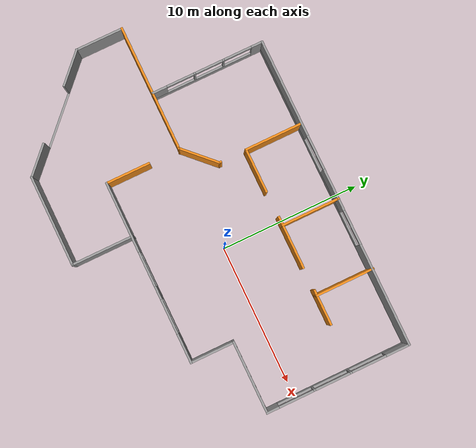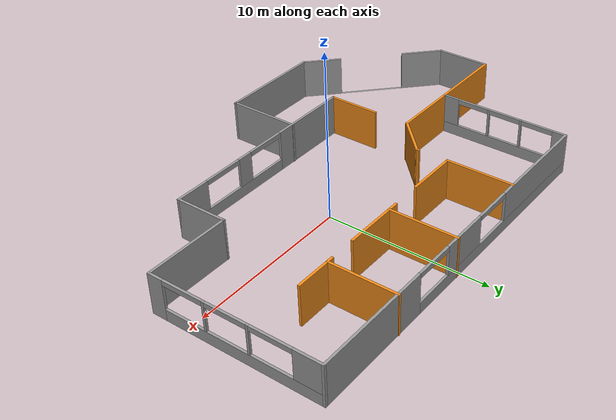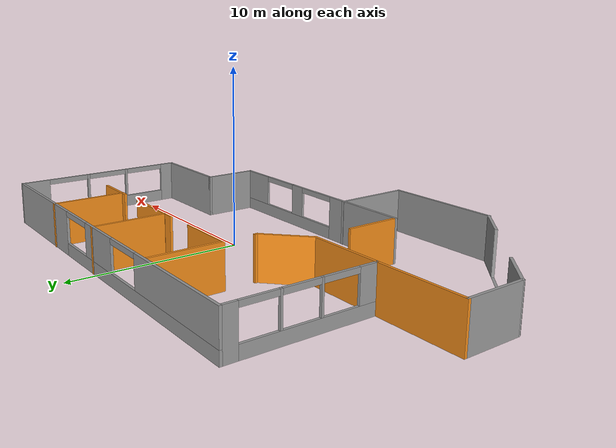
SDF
<sdf version="1.6">
 <world name="default">
  <scene><ambient>0.3 0.3 0.3 1</ambient><shadows>0</shadows><background>0.7 0.7 0.7 1</background></scene>
  <light name="sun" type="directional">
   <pose>0 0 10 0 -0 0</pose>
   <diffuse>0.8 0.8 0.8 1</diffuse>
   <specular>0.2 0.2 0.2 1</specular>
   <attenuation>
    <range>1000</range>
    <constant>0.9</constant>
    <linear>0.01</linear>
    <quadratic>0.001</quadratic>
   </attenuation>
   <direction>-0.5 0.1 -0.9</direction>
  </light>
  <model name="ground_plane">
   <static>1</static>
   <link name="link">
    <collision name="collision">
     <geometry><plane><normal>0 0 1</normal><size>100 100</size></plane></geometry>
     <surface><friction><ode><mu>100</mu><mu2>50</mu2></ode></friction></surface>
    </collision>
   </link>
  </model>
  <gravity>0 0 -9.8</gravity>
  <magnetic_field>6e-06 2.3e-05 -4.2e-05</magnetic_field>
  <atmosphere type="adiabatic"/>
  <physics name="default_physics" default="0" type="ode">
   <max_step_size>0.001</max_step_size>
   <real_time_factor>1</real_time_factor>
   <real_time_update_rate>1000</real_time_update_rate>
  </physics>
  <spherical_coordinates>
   <surface_model>EARTH_WGS84</surface_model>
   <latitude_deg>0</latitude_deg>
   <longitude_deg>0</longitude_deg>
   <elevation>0</elevation>
   <heading_deg>0</heading_deg>
  </spherical_coordinates>
  <model name="office_walls">
   <pose>-2.62192 -0.6586 0 0 -0 0</pose>
   <link name="Wall_10">
    <pose>1.96553 -4.56463 0 0 -0 0</pose>
    <visual name="Wall_10_Visual_0">
     <pose>-4.05781 0 1.25 0 -0 0</pose>
     <geometry><box><size>5.13439 0.15 2.5</size></box></geometry>
     <material>
      <script><uri>file://media/materials/scripts/gazebo.material</uri><name>Gazebo/Grey</name></script>
      <ambient>1 1 1 1</ambient>
     </material>
     <meta><layer>0</layer></meta>
    </visual>
    <collision name="Wall_10_Collision_0">
     <geometry><box><size>5.13439 0.15 2.5</size></box></geometry>
     <pose>-4.05781 0 1.25 0 -0 0</pose>
    </collision>
    <visual name="Wall_10_Visual_1">
     <pose>2.56719 0 0.35 0 -0 0</pose>
     <geometry><box><size>8.11561 0.15 0.7</size></box></geometry>
     <material>
      <script><uri>file://media/materials/scripts/gazebo.material</uri><name>Gazebo/Grey</name></script>
      <ambient>1 1 1 1</ambient>
     </material>
     <meta><layer>0</layer></meta>
    </visual>
    <collision name="Wall_10_Collision_1">
     <geometry><box><size>8.11561 0.15 0.7</size></box></geometry>
     <pose>2.56719 0 0.35 0 -0 0</pose>
    </collision>
    <visual name="Wall_10_Visual_2">
     <pose>1.49239 0 1.6 0 -0 0</pose>
     <geometry><box><size>0.966 0.15 1.8</size></box></geometry>
     <material>
      <script><uri>file://media/materials/scripts/gazebo.material</uri><name>Gazebo/Grey</name></script>
      <ambient>1 1 1 1</ambient>
     </material>
     <meta><layer>0</layer></meta>
    </visual>
    <collision name="Wall_10_Collision_2">
     <geometry><box><size>0.966 0.15 1.8</size></box></geometry>
     <pose>1.49239 0 1.6 0 -0 0</pose>
    </collision>
    <visual name="Wall_10_Visual_3">
     <pose>5.5502 0 1.6 0 -0 0</pose>
     <geometry><box><size>2.14961 0.15 1.8</size></box></geometry>
     <material>
      <script><uri>file://media/materials/scripts/gazebo.material</uri><name>Gazebo/Grey</name></script>
      <ambient>1 1 1 1</ambient>
     </material>
     <meta><layer>0</layer></meta>
    </visual>
    <collision name="Wall_10_Collision_3">
     <geometry><box><size>2.14961 0.15 1.8</size></box></geometry>
     <pose>5.5502 0 1.6 0 -0 0</pose>
    </collision>
    <visual name="Wall_10_Visual_4">
     <pose>-0.240611 0 2.35 0 -0 0</pose>
     <geometry><box><size>2.5 0.15 0.3</size></box></geometry>
     <material>
      <script><uri>file://media/materials/scripts/gazebo.material</uri><name>Gazebo/Grey</name></script>
      <ambient>1 1 1 1</ambient>
     </material>
     <meta><layer>0</layer></meta>
    </visual>
    <collision name="Wall_10_Collision_4">
     <geometry><box><size>2.5 0.15 0.3</size></box></geometry>
     <pose>-0.240611 0 2.35 0 -0 0</pose>
    </collision>
    <visual name="Wall_10_Visual_5">
     <pose>3.22539 0 2.35 0 -0 0</pose>
     <geometry><box><size>2.5 0.15 0.3</size></box></geometry>
     <material>
      <script><uri>file://media/materials/scripts/gazebo.material</uri><name>Gazebo/Grey</name></script>
      <ambient>1 1 1 1</ambient>
     </material>
     <meta><layer>0</layer></meta>
    </visual>
    <collision name="Wall_10_Collision_5">
     <geometry><box><size>2.5 0.15 0.3</size></box></geometry>
     <pose>3.22539 0 2.35 0 -0 0</pose>
    </collision>
   </link>
   <link name="Wall_11">
    <collision name="Wall_11_Collision">
     <geometry><box><size>3.25 0.15 2.5</size></box></geometry>
     <pose>0 0 1.25 0 -0 0</pose>
    </collision>
    <visual name="Wall_11_Visual">
     <pose>0 0 1.25 0 -0 0</pose>
     <geometry><box><size>3.25 0.15 2.5</size></box></geometry>
     <material>
      <script><uri>file://media/materials/scripts/gazebo.material</uri><name>Gazebo/Grey</name></script>
      <ambient>1 1 1 1</ambient>
     </material>
     <meta><layer>0</layer></meta>
    </visual>
    <pose>8.51553 -3.01463 0 0 -0 1.5708</pose>
   </link>
   <link name="Wall_12">
    <collision name="Wall_12_Collision">
     <geometry><box><size>5.25 0.15 2.5</size></box></geometry>
     <pose>0 0 1.25 0 -0 0</pose>
    </collision>
    <visual name="Wall_12_Visual">
     <pose>0 0 1.25 0 -0 0</pose>
     <geometry><box><size>5.25 0.15 2.5</size></box></geometry>
     <material>
      <script><uri>file://media/materials/scripts/gazebo.material</uri><name>Gazebo/Grey</name></script>
      <ambient>1 1 1 1</ambient>
     </material>
     <meta><layer>0</layer></meta>
    </visual>
    <pose>11.0655 -1.46463 0 0 -0 0</pose>
   </link>
   <link name="Wall_14">
    <pose>13.6155 3.71037 0 0 -0 1.5708</pose>
    <visual name="Wall_14_Visual_0">
     <pose>-4.77588 0 1.25 0 -0 0</pose>
     <geometry><box><size>0.948232 0.15 2.5</size></box></geometry>
     <material>
      <script><uri>file://media/materials/scripts/gazebo.material</uri><name>Gazebo/Grey</name></script>
      <ambient>1 1 1 1</ambient>
     </material>
     <meta><layer>0</layer></meta>
    </visual>
    <collision name="Wall_14_Collision_0">
     <geometry><box><size>0.948232 0.15 2.5</size></box></geometry>
     <pose>-4.77588 0 1.25 0 -0 0</pose>
    </collision>
    <visual name="Wall_14_Visual_1">
     <pose>0.474116 0 0.35 0 -0 0</pose>
     <geometry><box><size>9.55177 0.15 0.7</size></box></geometry>
     <material>
      <script><uri>file://media/materials/scripts/gazebo.material</uri><name>Gazebo/Grey</name></script>
      <ambient>1 1 1 1</ambient>
     </material>
     <meta><layer>0</layer></meta>
    </visual>
    <collision name="Wall_14_Collision_1">
     <geometry><box><size>9.55177 0.15 0.7</size></box></geometry>
     <pose>0.474116 0 0.35 0 -0 0</pose>
    </collision>
    <visual name="Wall_14_Visual_2">
     <pose>-1.72677 0 1.6 0 -0 0</pose>
     <geometry><box><size>0.15 0.15 1.8</size></box></geometry>
     <material>
      <script><uri>file://media/materials/scripts/gazebo.material</uri><name>Gazebo/Grey</name></script>
      <ambient>1 1 1 1</ambient>
     </material>
     <meta><layer>0</layer></meta>
    </visual>
    <collision name="Wall_14_Collision_2">
     <geometry><box><size>0.15 0.15 1.8</size></box></geometry>
     <pose>-1.72677 0 1.6 0 -0 0</pose>
    </collision>
    <visual name="Wall_14_Visual_3">
     <pose>0.923233 0 1.6 0 -0 0</pose>
     <geometry><box><size>0.15 0.15 1.8</size></box></geometry>
     <material>
      <script><uri>file://media/materials/scripts/gazebo.material</uri><name>Gazebo/Grey</name></script>
      <ambient>1 1 1 1</ambient>
     </material>
     <meta><layer>0</layer></meta>
    </visual>
    <collision name="Wall_14_Collision_3">
     <geometry><box><size>0.15 0.15 1.8</size></box></geometry>
     <pose>0.923233 0 1.6 0 -0 0</pose>
    </collision>
    <visual name="Wall_14_Visual_4">
     <pose>4.37412 0 1.6 0 -0 0</pose>
     <geometry><box><size>1.75177 0.15 1.8</size></box></geometry>
     <material>
      <script><uri>file://media/materials/scripts/gazebo.material</uri><name>Gazebo/Grey</name></script>
      <ambient>1 1 1 1</ambient>
     </material>
     <meta><layer>0</layer></meta>
    </visual>
    <collision name="Wall_14_Collision_4">
     <geometry><box><size>1.75177 0.15 1.8</size></box></geometry>
     <pose>4.37412 0 1.6 0 -0 0</pose>
    </collision>
    <visual name="Wall_14_Visual_5">
     <pose>-3.05177 0 2.35 0 -0 0</pose>
     <geometry><box><size>2.5 0.15 0.3</size></box></geometry>
     <material>
      <script><uri>file://media/materials/scripts/gazebo.material</uri><name>Gazebo/Grey</name></script>
      <ambient>1 1 1 1</ambient>
     </material>
     <meta><layer>0</layer></meta>
    </visual>
    <collision name="Wall_14_Collision_5">
     <geometry><box><size>2.5 0.15 0.3</size></box></geometry>
     <pose>-3.05177 0 2.35 0 -0 0</pose>
    </collision>
    <visual name="Wall_14_Visual_6">
     <pose>-0.401767 0 2.35 0 -0 0</pose>
     <geometry><box><size>2.5 0.15 0.3</size></box></geometry>
     <material>
      <script><uri>file://media/materials/scripts/gazebo.material</uri><name>Gazebo/Grey</name></script>
      <ambient>1 1 1 1</ambient>
     </material>
     <meta><layer>0</layer></meta>
    </visual>
    <collision name="Wall_14_Collision_6">
     <geometry><box><size>2.5 0.15 0.3</size></box></geometry>
     <pose>-0.401767 0 2.35 0 -0 0</pose>
    </collision>
    <visual name="Wall_14_Visual_7">
     <pose>2.24823 0 2.35 0 -0 0</pose>
     <geometry><box><size>2.5 0.15 0.3</size></box></geometry>
     <material>
      <script><uri>file://media/materials/scripts/gazebo.material</uri><name>Gazebo/Grey</name></script>
      <ambient>1 1 1 1</ambient>
     </material>
     <meta><layer>0</layer></meta>
    </visual>
    <collision name="Wall_14_Collision_7">
     <geometry><box><size>2.5 0.15 0.3</size></box></geometry>
     <pose>2.24823 0 2.35 0 -0 0</pose>
    </collision>
   </link>
   <link name="Wall_20">
    <pose>2.44053 8.88537 0 0 -0 3.14159</pose>
    <visual name="Wall_20_Visual_0">
     <pose>-7.55969 0 1.25 0 -0 0</pose>
     <geometry><box><size>7.38061 0.15 2.5</size></box></geometry>
     <material>
      <script><uri>file://media/materials/scripts/gazebo.material</uri><name>Gazebo/Grey</name></script>
      <ambient>1 1 1 1</ambient>
     </material>
     <meta><layer>0</layer></meta>
    </visual>
    <collision name="Wall_20_Collision_0">
     <geometry><box><size>7.38061 0.15 2.5</size></box></geometry>
     <pose>-7.55969 0 1.25 0 -0 0</pose>
    </collision>
    <visual name="Wall_20_Visual_1">
     <pose>3.6903 0 0.35 0 -0 0</pose>
     <geometry><box><size>15.1194 0.15 0.7</size></box></geometry>
     <material>
      <script><uri>file://media/materials/scripts/gazebo.material</uri><name>Gazebo/Grey</name></script>
      <ambient>1 1 1 1</ambient>
     </material>
     <meta><layer>0</layer></meta>
    </visual>
    <collision name="Wall_20_Collision_1">
     <geometry><box><size>15.1194 0.15 0.7</size></box></geometry>
     <pose>3.6903 0 0.35 0 -0 0</pose>
    </collision>
    <visual name="Wall_20_Visual_2">
     <pose>0.149611 0 1.6 0 -0 0</pose>
     <geometry><box><size>3.038 0.15 1.8</size></box></geometry>
     <material>
      <script><uri>file://media/materials/scripts/gazebo.material</uri><name>Gazebo/Grey</name></script>
      <ambient>1 1 1 1</ambient>
     </material>
     <meta><layer>0</layer></meta>
    </visual>
    <collision name="Wall_20_Collision_2">
     <geometry><box><size>3.038 0.15 1.8</size></box></geometry>
     <pose>0.149611 0 1.6 0 -0 0</pose>
    </collision>
    <visual name="Wall_20_Visual_3">
     <pose>7.7093 0 1.6 0 -0 0</pose>
     <geometry><box><size>7.08139 0.15 1.8</size></box></geometry>
     <material>
      <script><uri>file://media/materials/scripts/gazebo.material</uri><name>Gazebo/Grey</name></script>
      <ambient>1 1 1 1</ambient>
     </material>
     <meta><layer>0</layer></meta>
    </visual>
    <collision name="Wall_20_Collision_3">
     <geometry><box><size>7.08139 0.15 1.8</size></box></geometry>
     <pose>7.7093 0 1.6 0 -0 0</pose>
    </collision>
    <visual name="Wall_20_Visual_4">
     <pose>-2.61939 0 2.35 0 -0 0</pose>
     <geometry><box><size>2.5 0.15 0.3</size></box></geometry>
     <material>
      <script><uri>file://media/materials/scripts/gazebo.material</uri><name>Gazebo/Grey</name></script>
      <ambient>1 1 1 1</ambient>
     </material>
     <meta><layer>0</layer></meta>
    </visual>
    <collision name="Wall_20_Collision_4">
     <geometry><box><size>2.5 0.15 0.3</size></box></geometry>
     <pose>-2.61939 0 2.35 0 -0 0</pose>
    </collision>
    <visual name="Wall_20_Visual_5">
     <pose>2.91861 0 2.35 0 -0 0</pose>
     <geometry><box><size>2.5 0.15 0.3</size></box></geometry>
     <material>
      <script><uri>file://media/materials/scripts/gazebo.material</uri><name>Gazebo/Grey</name></script>
      <ambient>1 1 1 1</ambient>
     </material>
     <meta><layer>0</layer></meta>
    </visual>
    <collision name="Wall_20_Collision_5">
     <geometry><box><size>2.5 0.15 0.3</size></box></geometry>
     <pose>2.91861 0 2.35 0 -0 0</pose>
    </collision>
   </link>
   <link name="Wall_21">
    <pose>-8.73447 4.83537 0 0 -0 -1.5708</pose>
    <visual name="Wall_21_Visual_0">
     <pose>-3.68162 0 1.25 0 -0 0</pose>
     <geometry><box><size>0.886767 0.15 2.5</size></box></geometry>
     <material>
      <script><uri>file://media/materials/scripts/gazebo.material</uri><name>Gazebo/Grey</name></script>
      <ambient>1 1 1 1</ambient>
     </material>
     <meta><layer>0</layer></meta>
    </visual>
    <collision name="Wall_21_Collision_0">
     <geometry><box><size>0.886767 0.15 2.5</size></box></geometry>
     <pose>-3.68162 0 1.25 0 -0 0</pose>
    </collision>
    <visual name="Wall_21_Visual_1">
     <pose>0.443384 0 0.35 0 -0 0</pose>
     <geometry><box><size>7.36323 0.15 0.7</size></box></geometry>
     <material>
      <script><uri>file://media/materials/scripts/gazebo.material</uri><name>Gazebo/Grey</name></script>
      <ambient>1 1 1 1</ambient>
     </material>
     <meta><layer>0</layer></meta>
    </visual>
    <collision name="Wall_21_Collision_1">
     <geometry><box><size>7.36323 0.15 0.7</size></box></geometry>
     <pose>0.443384 0 0.35 0 -0 0</pose>
    </collision>
    <visual name="Wall_21_Visual_2">
     <pose>-1.17523 0 1.6 0 -0 0</pose>
     <geometry><box><size>0.126 0.15 1.8</size></box></geometry>
     <material>
      <script><uri>file://media/materials/scripts/gazebo.material</uri><name>Gazebo/Grey</name></script>
      <ambient>1 1 1 1</ambient>
     </material>
     <meta><layer>0</layer></meta>
    </visual>
    <collision name="Wall_21_Collision_2">
     <geometry><box><size>0.126 0.15 1.8</size></box></geometry>
     <pose>-1.17523 0 1.6 0 -0 0</pose>
    </collision>
    <visual name="Wall_21_Visual_3">
     <pose>0.951558 0 1.6 0 -0 0</pose>
     <geometry><box><size>0.127582 0.15 1.8</size></box></geometry>
     <material>
      <script><uri>file://media/materials/scripts/gazebo.material</uri><name>Gazebo/Grey</name></script>
      <ambient>1 1 1 1</ambient>
     </material>
     <meta><layer>0</layer></meta>
    </visual>
    <collision name="Wall_21_Collision_3">
     <geometry><box><size>0.127582 0.15 1.8</size></box></geometry>
     <pose>0.951558 0 1.6 0 -0 0</pose>
    </collision>
    <visual name="Wall_21_Visual_4">
     <pose>3.57017 0 1.6 0 -0 0</pose>
     <geometry><box><size>1.10965 0.15 1.8</size></box></geometry>
     <material>
      <script><uri>file://media/materials/scripts/gazebo.material</uri><name>Gazebo/Grey</name></script>
      <ambient>1 1 1 1</ambient>
     </material>
     <meta><layer>0</layer></meta>
    </visual>
    <collision name="Wall_21_Collision_4">
     <geometry><box><size>1.10965 0.15 1.8</size></box></geometry>
     <pose>3.57017 0 1.6 0 -0 0</pose>
    </collision>
    <visual name="Wall_21_Visual_5">
     <pose>-2.23823 0 2.35 0 -0 0</pose>
     <geometry><box><size>2 0.15 0.3</size></box></geometry>
     <material>
      <script><uri>file://media/materials/scripts/gazebo.material</uri><name>Gazebo/Grey</name></script>
      <ambient>1 1 1 1</ambient>
     </material>
     <meta><layer>0</layer></meta>
    </visual>
    <collision name="Wall_21_Collision_5">
     <geometry><box><size>2 0.15 0.3</size></box></geometry>
     <pose>-2.23823 0 2.35 0 -0 0</pose>
    </collision>
    <visual name="Wall_21_Visual_6">
     <pose>-0.112233 0 2.35 0 -0 0</pose>
     <geometry><box><size>2 0.15 0.3</size></box></geometry>
     <material>
      <script><uri>file://media/materials/scripts/gazebo.material</uri><name>Gazebo/Grey</name></script>
      <ambient>1 1 1 1</ambient>
     </material>
     <meta><layer>0</layer></meta>
    </visual>
    <collision name="Wall_21_Collision_6">
     <geometry><box><size>2 0.15 0.3</size></box></geometry>
     <pose>-0.112233 0 2.35 0 -0 0</pose>
    </collision>
    <visual name="Wall_21_Visual_7">
     <pose>2.01535 0 2.35 0 -0 0</pose>
     <geometry><box><size>2 0.15 0.3</size></box></geometry>
     <material>
      <script><uri>file://media/materials/scripts/gazebo.material</uri><name>Gazebo/Grey</name></script>
      <ambient>1 1 1 1</ambient>
     </material>
     <meta><layer>0</layer></meta>
    </visual>
    <collision name="Wall_21_Collision_7">
     <geometry><box><size>2 0.15 0.3</size></box></geometry>
     <pose>2.01535 0 2.35 0 -0 0</pose>
    </collision>
   </link>
   <link name="Wall_22">
    <collision name="Wall_22_Collision">
     <geometry><box><size>4.25 0.15 2.5</size></box></geometry>
     <pose>0 0 1.25 0 -0 0</pose>
    </collision>
    <visual name="Wall_22_Visual">
     <pose>0 0 1.25 0 -0 0</pose>
     <geometry><box><size>4.25 0.15 2.5</size></box></geometry>
     <material>
      <script><uri>file://media/materials/scripts/gazebo.material</uri><name>Gazebo/Orange</name></script>
      <ambient>0.82 0.254 0.04 1</ambient>
     </material>
     <meta><layer>0</layer></meta>
    </visual>
    <pose>-6.68447 0.785372 0 0 -0 0</pose>
   </link>
   <link name="Wall_23">
    <collision name="Wall_23_Collision">
     <geometry><box><size>3 0.15 2.5</size></box></geometry>
     <pose>0 0 1.25 0 -0 0</pose>
    </collision>
    <visual name="Wall_23_Visual">
     <pose>0 0 1.25 0 -0 0</pose>
     <geometry><box><size>3 0.15 2.5</size></box></geometry>
     <material>
      <script><uri>file://media/materials/scripts/gazebo.material</uri><name>Gazebo/Orange</name></script>
      <ambient>0.82 0.254 0.04 1</ambient>
     </material>
     <meta><layer>0</layer></meta>
    </visual>
    <pose>-3.62684 1.793 0 0 -0 0.785398</pose>
   </link>
   <link name="Wall_24">
    <collision name="Wall_24_Collision">
     <geometry><box><size>0.25 0.15 2.5</size></box></geometry>
     <pose>0 0 1.25 0 -0 0</pose>
    </collision>
    <visual name="Wall_24_Visual">
     <pose>0 0 1.25 0 -0 0</pose>
     <geometry><box><size>0.25 0.15 2.5</size></box></geometry>
     <material>
      <script><uri>file://media/materials/scripts/gazebo.material</uri><name>Gazebo/Orange</name></script>
      <ambient>0.82 0.254 0.04 1</ambient>
     </material>
     <meta><layer>0</layer></meta>
    </visual>
    <pose>-2.61922 2.85063 0 0 -0 1.5708</pose>
   </link>
   <link name="Wall_26">
    <collision name="Wall_26_Collision">
     <geometry><box><size>4.25 0.15 2.5</size></box></geometry>
     <pose>0 0 1.25 0 -0 0</pose>
    </collision>
    <visual name="Wall_26_Visual">
     <pose>0 0 1.25 0 -0 0</pose>
     <geometry><box><size>4.25 0.15 2.5</size></box></geometry>
     <material>
      <script><uri>file://media/materials/scripts/gazebo.material</uri><name>Gazebo/Orange</name></script>
      <ambient>0.82 0.254 0.04 1</ambient>
     </material>
     <meta><layer>0</layer></meta>
    </visual>
    <pose>-2.63704 6.83452 0 0 -0 -1.5708</pose>
   </link>
   <link name="Wall_28">
    <collision name="Wall_28_Collision">
     <geometry><box><size>3.25 0.15 2.5</size></box></geometry>
     <pose>0 0 1.25 0 -0 0</pose>
    </collision>
    <visual name="Wall_28_Visual">
     <pose>0 0 1.25 0 -0 0</pose>
     <geometry><box><size>3.25 0.15 2.5</size></box></geometry>
     <material>
      <script><uri>file://media/materials/scripts/gazebo.material</uri><name>Gazebo/Orange</name></script>
      <ambient>0.82 0.254 0.04 1</ambient>
     </material>
     <meta><layer>0</layer></meta>
    </visual>
    <pose>-1.08704 4.78452 0 0 -0 0</pose>
   </link>
   <link name="Wall_30">
    <collision name="Wall_30_Collision">
     <geometry><box><size>0.719583 0.15 2.5</size></box></geometry>
     <pose>0 0 1.25 0 -0 0</pose>
    </collision>
    <visual name="Wall_30_Visual">
     <pose>0 0 1.25 0 -0 0</pose>
     <geometry><box><size>0.719583 0.15 2.5</size></box></geometry>
     <material>
      <script><uri>file://media/materials/scripts/gazebo.material</uri><name>Gazebo/Orange</name></script>
      <ambient>0.82 0.254 0.04 1</ambient>
     </material>
     <meta><layer>0</layer></meta>
    </visual>
    <pose>2.65237 4.80552 0 0 -0 0</pose>
   </link>
   <link name="Wall_31">
    <collision name="Wall_31_Collision">
     <geometry><box><size>4.25 0.15 2.5</size></box></geometry>
     <pose>0 0 1.25 0 -0 0</pose>
    </collision>
    <visual name="Wall_31_Visual">
     <pose>0 0 1.25 0 -0 0</pose>
     <geometry><box><size>4.25 0.15 2.5</size></box></geometry>
     <material>
      <script><uri>file://media/materials/scripts/gazebo.material</uri><name>Gazebo/Orange</name></script>
      <ambient>0.82 0.254 0.04 1</ambient>
     </material>
     <meta><layer>0</layer></meta>
    </visual>
    <pose>2.95237 6.85552 0 0 -0 1.5708</pose>
   </link>
   <link name="Wall_33">
    <collision name="Wall_33_Collision">
     <geometry><box><size>3.28042 0.15 2.5</size></box></geometry>
     <pose>0 0 1.25 0 -0 0</pose>
    </collision>
    <visual name="Wall_33_Visual">
     <pose>0 0 1.25 0 -0 0</pose>
     <geometry><box><size>3.28042 0.15 2.5</size></box></geometry>
     <material>
      <script><uri>file://media/materials/scripts/gazebo.material</uri><name>Gazebo/Orange</name></script>
      <ambient>0.82 0.254 0.04 1</ambient>
     </material>
     <meta><layer>0</layer></meta>
    </visual>
    <pose>4.50237 4.80552 0 0 -0 0</pose>
   </link>
   <link name="Wall_43">
    <collision name="Wall_43_Collision">
     <geometry><box><size>0.5 0.15 2.5</size></box></geometry>
     <pose>0 0 1.25 0 -0 0</pose>
    </collision>
    <visual name="Wall_43_Visual">
     <pose>0 0 1.25 0 -0 0</pose>
     <geometry><box><size>0.5 0.15 2.5</size></box></geometry>
     <material>
      <script><uri>file://media/materials/scripts/gazebo.material</uri><name>Gazebo/Orange</name></script>
      <ambient>0.82 0.254 0.04 1</ambient>
     </material>
     <meta><layer>0</layer></meta>
    </visual>
    <pose>7.93623 4.82187 0 0 -0 0</pose>
   </link>
   <link name="Wall_44">
    <collision name="Wall_44_Collision">
     <geometry><box><size>4.25 0.15 2.5</size></box></geometry>
     <pose>0 0 1.25 0 -0 0</pose>
    </collision>
    <visual name="Wall_44_Visual">
     <pose>0 0 1.25 0 -0 0</pose>
     <geometry><box><size>4.25 0.15 2.5</size></box></geometry>
     <material>
      <script><uri>file://media/materials/scripts/gazebo.material</uri><name>Gazebo/Orange</name></script>
      <ambient>0.82 0.254 0.04 1</ambient>
     </material>
     <meta><layer>0</layer></meta>
    </visual>
    <pose>8.11123 6.87187 0 0 -0 1.5708</pose>
   </link>
   <link name="Wall_47">
    <collision name="Wall_47_Collision">
     <geometry><box><size>2.25 0.15 2.5</size></box></geometry>
     <pose>0 0 1.25 0 -0 0</pose>
    </collision>
    <visual name="Wall_47_Visual">
     <pose>0 0 1.25 0 -0 0</pose>
     <geometry><box><size>2.25 0.15 2.5</size></box></geometry>
     <material>
      <script><uri>file://media/materials/scripts/gazebo.material</uri><name>Gazebo/Orange</name></script>
      <ambient>0.82 0.254 0.04 1</ambient>
     </material>
     <meta><layer>0</layer></meta>
    </visual>
    <pose>9.16123 4.82187 0 0 -0 0</pose>
   </link>
   <link name="Wall_49">
    <collision name="Wall_49_Collision">
     <geometry><box><size>5 0.15 2.5</size></box></geometry>
     <pose>0 0 1.25 0 -0 0</pose>
    </collision>
    <visual name="Wall_49_Visual">
     <pose>0 0 1.25 0 -0 0</pose>
     <geometry><box><size>5 0.15 2.5</size></box></geometry>
     <material>
      <script><uri>file://media/materials/scripts/gazebo.material</uri><name>Gazebo/Orange</name></script>
      <ambient>0.82 0.254 0.04 1</ambient>
     </material>
     <meta><layer>0</layer></meta>
    </visual>
    <pose>-11.1595 0.785372 0 0 -0 3.14159</pose>
   </link>
   <link name="Wall_52">
    <collision name="Wall_52_Collision">
     <geometry><box><size>3.5 0.15 2.5</size></box></geometry>
     <pose>0 0 1.25 0 -0 0</pose>
    </collision>
    <visual name="Wall_52_Visual">
     <pose>0 0 1.25 0 -0 0</pose>
     <geometry><box><size>3.5 0.15 2.5</size></box></geometry>
     <material>
      <script><uri>file://media/materials/scripts/gazebo.material</uri><name>Gazebo/Grey</name></script>
      <ambient>1 1 1 1</ambient>
     </material>
     <meta><layer>0</layer></meta>
    </visual>
    <pose>-13.5845 -0.889628 0 0 -0 -1.5708</pose>
   </link>
   <link name="Wall_58">
    <collision name="Wall_58_Collision">
     <geometry><box><size>4.5 0.15 2.5</size></box></geometry>
     <pose>0 0 1.25 0 -0 0</pose>
    </collision>
    <visual name="Wall_58_Visual">
     <pose>0 0 1.25 0 -0 0</pose>
     <geometry><box><size>4.5 0.15 2.5</size></box></geometry>
     <material>
      <script><uri>file://media/materials/scripts/gazebo.material</uri><name>Gazebo/Grey</name></script>
      <ambient>1 1 1 1</ambient>
     </material>
     <meta><layer>0</layer></meta>
    </visual>
    <pose>-0.657333 -6.71581 0 0 -0 -1.5708</pose>
   </link>
   <link name="Wall_59">
    <collision name="Wall_59_Collision">
     <geometry><box><size>6.56961 0.15 2.5</size></box></geometry>
     <pose>0 0 1.25 0 -0 0</pose>
    </collision>
    <visual name="Wall_59_Visual">
     <pose>0 0 1.25 0 -0 0</pose>
     <geometry><box><size>6.56961 0.15 2.5</size></box></geometry>
     <material>
      <script><uri>file://media/materials/scripts/gazebo.material</uri><name>Gazebo/Grey</name></script>
      <ambient>1 1 1 1</ambient>
     </material>
     <meta><layer>0</layer></meta>
    </visual>
    <pose>-3.86714 -8.89081 0 0 -0 3.14159</pose>
   </link>
   <link name="Wall_64">
    <pose>-10.3307 -5.72772 0 0 -0 -0.771269</pose>
    <visual name="Wall_64_Visual_0">
     <pose>-3.25873 0 1.25 0 -0 0</pose>
     <geometry><box><size>2.70826 0.15 2.5</size></box></geometry>
     <material>
      <script><uri>file://media/materials/scripts/gazebo.material</uri><name>Gazebo/Grey</name></script>
      <ambient>1 1 1 1</ambient>
     </material>
     <meta><layer>0</layer></meta>
    </visual>
    <collision name="Wall_64_Collision_0">
     <geometry><box><size>2.70826 0.15 2.5</size></box></geometry>
     <pose>-3.25873 0 1.25 0 -0 0</pose>
    </collision>
    <visual name="Wall_64_Visual_1">
     <pose>3.35413 0 1.25 0 -0 0</pose>
     <geometry><box><size>2.51745 0.15 2.5</size></box></geometry>
     <material>
      <script><uri>file://media/materials/scripts/gazebo.material</uri><name>Gazebo/Grey</name></script>
      <ambient>1 1 1 1</ambient>
     </material>
     <meta><layer>0</layer></meta>
    </visual>
    <collision name="Wall_64_Collision_1">
     <geometry><box><size>2.51745 0.15 2.5</size></box></geometry>
     <pose>3.35413 0 1.25 0 -0 0</pose>
    </collision>
    <visual name="Wall_64_Visual_2">
     <pose>0.095404 0 0 0 -0 0</pose>
     <geometry><box><size>4 0.15 0.0001</size></box></geometry>
     <material>
      <script><uri>file://media/materials/scripts/gazebo.material</uri><name>Gazebo/Grey</name></script>
      <ambient>1 1 1 1</ambient>
     </material>
     <meta><layer>0</layer></meta>
    </visual>
    <collision name="Wall_64_Collision_2">
     <geometry><box><size>4 0.15 0.0001</size></box></geometry>
     <pose>0.095404 0 0 0 -0 0</pose>
    </collision>
   </link>
   <link name="Wall_66">
    <collision name="Wall_66_Collision">
     <geometry><box><size>3.25 0.15 2.5</size></box></geometry>
     <pose>0 0 1.25 0 -0 0</pose>
    </collision>
    <visual name="Wall_66_Visual">
     <pose>0 0 1.25 0 -0 0</pose>
     <geometry><box><size>3.25 0.15 2.5</size></box></geometry>
     <material>
      <script><uri>file://media/materials/scripts/gazebo.material</uri><name>Gazebo/Orange</name></script>
      <ambient>0.82 0.254 0.04 1</ambient>
     </material>
     <meta><layer>0</layer></meta>
    </visual>
    <pose>-4.58447 -3.01463 0 0 -0 1.5708</pose>
   </link>
   <static>1</static>
  </model>
 </world>
</sdf>
